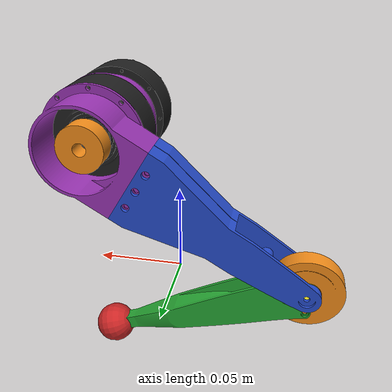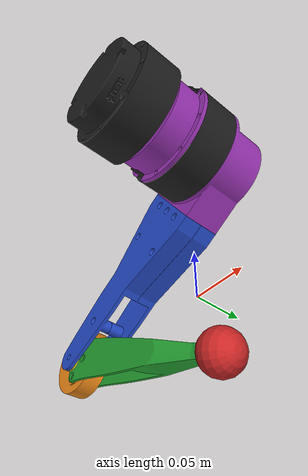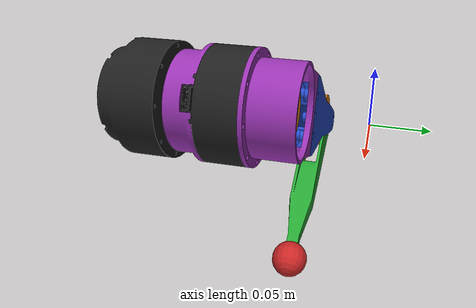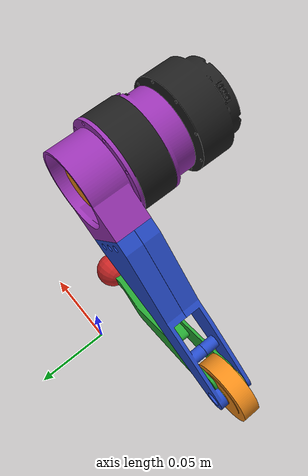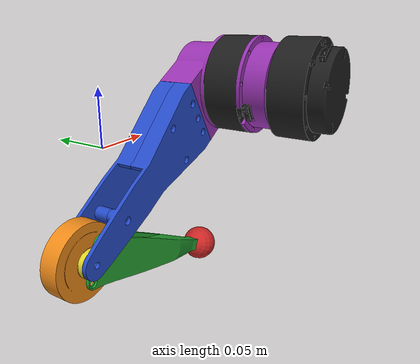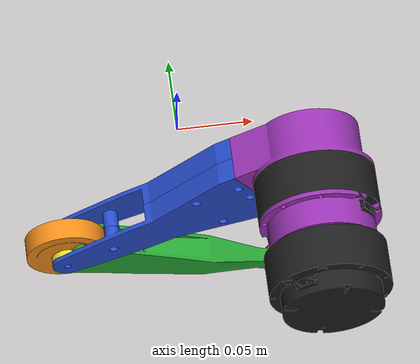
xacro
<?xml version="1.0"?>
<robot name="robot_dog" xmlns:xacro="http://www.ros.org/wiki/xacro">

  <xacro:include filename="$(find robot_dog_description)/xacro/const.xacro"/>
  <xacro:include filename="$(find robot_dog_description)/xacro/materials.xacro"/>
  <xacro:include filename="$(find robot_dog_description)/xacro/leg.xacro"/>

  <!-- Ground/reference frame -->
  <link name="base_footprint"/>

  <!-- Invisible body frame. No visual box, so it will not intersect the leg. -->
  <link name="base_link">
    <inertial>
      <origin xyz="0 0 0" rpy="0 0 0"/>
      <mass value="2.0"/>
      <inertia
        ixx="0.005"
        ixy="0.0"
        ixz="0.0"
        iyy="0.015"
        iyz="0.0"
        izz="0.018"/>
    </inertial>
  </link>

  <joint name="base_footprint_joint" type="fixed">
    <parent link="base_footprint"/>
    <child link="base_link"/>
    <origin xyz="0 0 0" rpy="0 0 0"/>
  </joint>

  <!-- Single front-right test leg -->
  <xacro:simple_leg
    prefix="front_right"
    parent="base_link"
    x="0.08"
    y="-0.06"
    z="0.04"/>

</robot>

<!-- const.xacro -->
<robot xmlns:xacro="http://www.ros.org/wiki/xacro">

  <!-- Main dimensions in meters -->
  <xacro:property name="upper_leg_length" value="0.1875"/>
  <xacro:property name="lower_leg_length" value="0.1685"/>
  <xacro:property name="foot_radius" value="0.015"/>

  <!-- Temporary simple body dimensions -->
  <xacro:property name="body_length" value="0.30"/>
  <xacro:property name="body_width" value="0.12"/>
  <xacro:property name="body_height" value="0.08"/>

  <!-- Simple collision thicknesses -->
  <xacro:property name="upper_leg_width" value="0.035"/>
  <xacro:property name="upper_leg_depth" value="0.030"/>
  <xacro:property name="lower_leg_width" value="0.030"/>
  <xacro:property name="lower_leg_depth" value="0.025"/>

  <!-- Wide RViz-only visualization joint limits -->
  <xacro:property name="hip_lower_limit" value="-3.14159"/>
  <xacro:property name="hip_upper_limit" value="3.14159"/>
  <xacro:property name="knee_lower_limit" value="-3.14159"/>
  <xacro:property name="knee_upper_limit" value="3.14159"/>
</robot>

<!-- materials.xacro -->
<robot xmlns:xacro="http://www.ros.org/wiki/xacro">

<material name="body_gray">
  <color rgba="1.0 0.0 0.0 1.0"/>
</material>

  <material name="leg_dark">
    <color rgba="0.10 0.10 0.10 1.0"/>
  </material>

  <material name="joint_black">
    <color rgba="0.02 0.02 0.02 1.0"/>
  </material>

  <material name="foot_blue">
    <color rgba="0.05 0.15 0.80 1.0"/>
  </material>

</robot>

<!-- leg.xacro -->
<robot xmlns:xacro="http://www.ros.org/wiki/xacro">

  <xacro:macro name="simple_leg" params="prefix parent x y z">

    <!-- Fixed hip actuator link                                   -->
    <!-- This actuator body stays still when the hip slider moves. -->

    <link name="${prefix}_hip_motor_fixed">

      <!-- Fixed hip actuator body -->
      <visual>
        <origin xyz="-0.076951 -0.065148 -0.031931" rpy="-1.570796 -0.523599 0"/>
        <geometry>
          <mesh
            filename="package://robot_dog_description/meshes/RobStride02_Actuator.stl"
            scale="0.001 0.001 0.001"/>
        </geometry>
        <material name="actuator_black"/>
      </visual>

      <!-- Simple collision for fixed hip actuator.
           Origin is at the transformed STL body center, not the mesh origin. -->
      <collision>
        <origin xyz="0.000118 -0.083848 0.010078" rpy="-1.570796 -0.523599 0"/>
        <geometry>
          <cylinder radius="0.040" length="0.046"/>
        </geometry>
      </collision>

      <!-- Approximate inertial values for fixed RobStride actuator -->
      <inertial>
        <origin xyz="0.000118 -0.083848 0.010078" rpy="0 0 0"/>
        <mass value="0.405"/>
        <inertia
          ixx="0.00035"
          ixy="0.0"
          ixz="0.0"
          iyy="0.00035"
          iyz="0.0"
          izz="0.00035"/>
      </inertial>

    </link>

    <!-- Fixed mount from body/base to stationary hip actuator -->
    <joint name="${prefix}_hip_motor_fixed_joint" type="fixed">
      <parent link="${parent}"/>
      <child link="${prefix}_hip_motor_fixed"/>
      <origin xyz="${x} ${y} ${z}" rpy="0 0 0"/>
    </joint>

    <!-- Rotating upper leg link                                   -->
    <!-- This frame is centered on the fixed actuator shaft line.   -->
    <!-- Everything below rotates in a clean circle about Y.        -->

    <link name="${prefix}_upper_leg">

      <!-- Male thigh panel -->
      <visual>
        <origin xyz="-0.190118 0.060148 0.027422" rpy="0 0 0"/>
        <geometry>
          <mesh
            filename="package://robot_dog_description/meshes/Thigh_Panel_Male_V2.stl"
            scale="0.001 0.001 0.001"/>
        </geometry>
        <material name="upper_leg_blue"/>
      </visual>

      <!-- Female thigh panel: flipped inward and aligned flush with male -->
      <visual>
        <origin xyz="0.125088 0.085750 0.027422" rpy="0 0 3.141593"/>
        <geometry>
          <mesh
            filename="package://robot_dog_description/meshes/Thigh_Panel_Female_V2.stl"
            scale="0.001 0.001 0.001"/>
        </geometry>
        <material name="upper_leg_blue"/>
      </visual>

      <!-- Hip shroud -->
      <visual>
        <origin xyz="-0.124954 0.056541 -0.022608" rpy="0 0 0"/>
        <geometry>
          <mesh
            filename="package://robot_dog_description/meshes/Hip_Shroud_V1.stl"
            scale="0.001 0.001 0.001"/>
        </geometry>
        <material name="shroud_purple"/>
      </visual>

      <!-- Rotating actuator attached to thigh pulley mount -->
      <visual>
        <origin xyz="-0.087760 0.052400 0.002001" rpy="-1.570796 0 0"/>
        <geometry>
          <mesh
            filename="package://robot_dog_description/meshes/RobStride02_Actuator.stl"
            scale="0.001 0.001 0.001"/>
        </geometry>
        <material name="actuator_black"/>
      </visual>

      <!-- Simple collision for rotating actuator.
           Origin is at the transformed STL body center. -->
      <collision>
        <origin xyz="-0.000012 0.033700 -0.000153" rpy="-1.570796 0 0"/>
        <geometry>
          <cylinder radius="0.040" length="0.046"/>
        </geometry>
      </collision>

      <!-- Thigh pulley mount: this rotates about the fixed actuator shaft -->
      <visual>
        <origin xyz="-0.087749 0.052400 0.002182" rpy="-1.570796 0 0"/>
        <geometry>
          <mesh
            filename="package://robot_dog_description/meshes/Thigh_Pulley_Mount_V1.stl"
            scale="0.001 0.001 0.001"/>
        </geometry>
        <material name="shroud_purple"/>
      </visual>

      <!-- 20T motor pulley -->
      <visual>
        <origin xyz="-0.000012 0.063900 -0.000129" rpy="0 0 0"/>
        <geometry>
          <mesh
            filename="package://robot_dog_description/meshes/20T_Pulley_Dimensions.stl"
            scale="0.001 0.001 0.001"/>
        </geometry>
        <material name="pulley_orange"/>
      </visual>

      <!-- Simplified upper-leg side rail collisions.
           These represent the straight thigh panel areas only.
           The 29 mm gap above the lower support cylinder is preserved. -->

      <!-- Left/outer thigh side rail collision -->
      <collision>
        <origin xyz="-0.014000 0.071150 -0.080600" rpy="0 0 0"/>
        <geometry>
          <box size="0.008 0.018 0.074"/>
        </geometry>
      </collision>

      <!-- Right/inner thigh side rail collision -->
      <collision>
        <origin xyz="0.014000 0.071150 -0.080600" rpy="0 0 0"/>
        <geometry>
          <box size="0.008 0.018 0.074"/>
        </geometry>
      </collision>

      <collision>
        <origin xyz="0.000000 0.071150 -0.151700" rpy="1.570796 0 0"/>
        <geometry>
          <cylinder radius="0.005" length="0.045"/>
        </geometry>
      </collision>

      <!-- Approximate inertial values for upper leg assembly -->
      <inertial>
        <origin xyz="-0.000015 0.071150 -0.105000" rpy="0 0 0"/>
        <mass value="0.9"/>
        <inertia
          ixx="0.004"
          ixy="0.0"
          ixz="0.0"
          iyy="0.004"
          iyz="0.0"
          izz="0.001"/>
      </inertial>

    </link>

    <joint name="${prefix}_hip_joint" type="revolute">
      <parent link="${prefix}_hip_motor_fixed"/>
      <child link="${prefix}_upper_leg"/>
      <origin xyz="0.000118 -0.065148 0.010078" rpy="0 1.03 0"/>
      <axis xyz="0 1 0"/>
      <limit lower="${hip_lower_limit}" upper="${hip_upper_limit}" effort="${hip_effort_limit}" velocity="${hip_velocity_limit}"/>
    </joint>

    <!-- Lower leg link                                            -->
    <!-- Lower leg, 30T pulley, and knee pin move with knee joint. -->

    <link name="${prefix}_lower_leg">

      <!-- Lower leg main part -->
      <visual>
        <origin xyz="0 0.007 0" rpy="3.141593 0 0"/>
        <geometry>
          <mesh
            filename="package://robot_dog_description/meshes/Lower_Leg_V1.stl"
            scale="0.001 0.001 0.001"/>
        </geometry>
        <material name="lower_leg_green"/>
      </visual>

      <!-- 30T knee pulley: aligned with lower leg -->
      <visual>
        <origin xyz="0 0.006800 -0.050000" rpy="3.141593 0 0"/>
        <geometry>
          <mesh
            filename="package://robot_dog_description/meshes/30T_Pulley_Dimension.stl"
            scale="0.001 0.001 0.001"/>
        </geometry>
        <material name="pulley_orange"/>
      </visual>

      <!-- Knee pin -->
      <visual>
        <origin xyz="0.093000 -0.011700 0.038000" rpy="0 1.570796 0"/>
        <geometry>
          <mesh
            filename="package://robot_dog_description/meshes/Knee_Pin_V1.stl"
            scale="0.001 0.001 0.001"/>
        </geometry>
        <material name="pin_yellow"/>
      </visual>

      <!-- Simple collision box for lower leg.
           Shortened so it stops above the 15 mm foot sphere. -->
      <collision>
        <origin xyz="0 0 -0.071" rpy="0 0 0"/>
        <geometry>
          <box size="0.026 0.020 0.142"/>
        </geometry>
      </collision>

      <!-- Approximate inertial values for lower leg assembly -->
      <inertial>
        <origin xyz="0 0 -0.071" rpy="0 0 0"/>
        <mass value="0.45"/>
        <inertia
          ixx="0.002"
          ixy="0.0"
          ixz="0.0"
          iyy="0.002"
          iyz="0.0"
          izz="0.0005"/>
      </inertial>

    </link>

    <joint name="${prefix}_knee_joint" type="revolute">
      <parent link="${prefix}_upper_leg"/>
      <child link="${prefix}_lower_leg"/>
      <origin xyz="-0.000118 0.071450 -0.187578" rpy="0 -2.239796 0"/>
      <axis xyz="0 1 0"/>
      <limit lower="${knee_lower_limit}" upper="${knee_upper_limit}" effort="${knee_effort_limit}" velocity="${knee_velocity_limit}"/>
    </joint>

    <!-- Foot link                                                 -->

    <link name="${prefix}_foot">

      <visual>
        <origin xyz="0 0 0" rpy="0 0 0"/>
        <geometry>
          <sphere radius="${foot_radius}"/>
        </geometry>
        <material name="foot_red"/>
      </visual>

      <!-- Simple collision for foot contact -->
      <collision>
        <origin xyz="0 0 0" rpy="0 0 0"/>
        <geometry>
          <sphere radius="${foot_radius}"/>
        </geometry>
      </collision>

      <!-- Approximate inertial values for TPU/rubber foot -->
      <inertial>
        <origin xyz="0 0 0" rpy="0 0 0"/>
        <mass value="0.05"/>
        <inertia
          ixx="0.00001"
          ixy="0.0"
          ixz="0.0"
          iyy="0.00001"
          iyz="0.0"
          izz="0.00001"/>
      </inertial>

    </link>

    <!-- Foot placed at visible end of Lower_Leg_V1.stl: 157 mm -->
    <joint name="${prefix}_foot_joint" type="fixed">
      <parent link="${prefix}_lower_leg"/>
      <child link="${prefix}_foot"/>
      <origin xyz="0 0 -0.157" rpy="0 0 0"/>
    </joint>

  </xacro:macro>

</robot>
